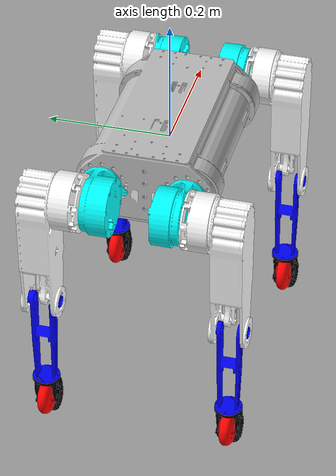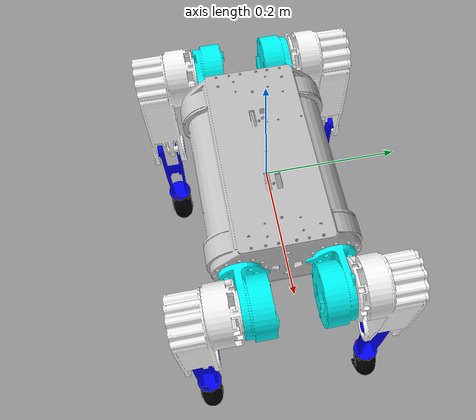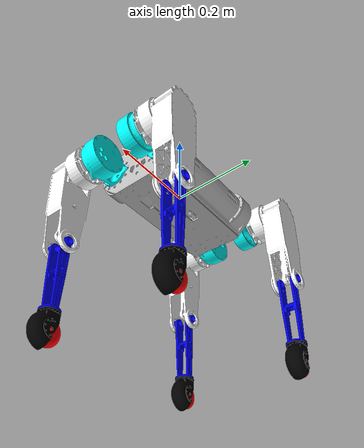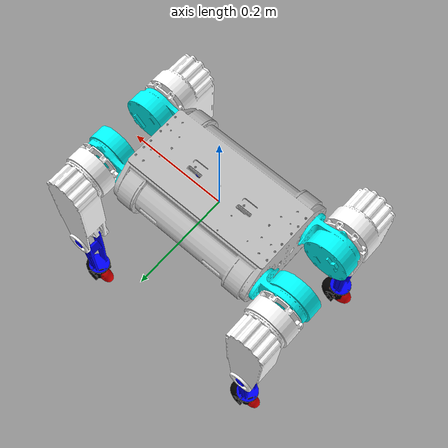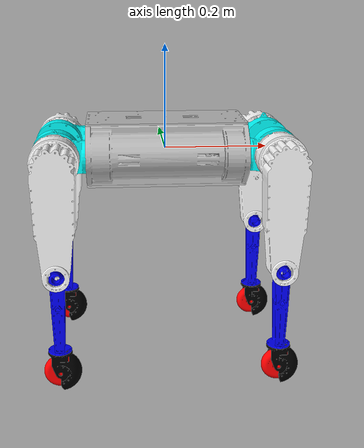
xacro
<?xml version="1.0" encoding="utf-8"?>
<robot name="robot_3dros" xmlns:xacro="http://www.ros.org/wiki/xacro">
<!--all parament*******************************************************************************************-->
   <xacro:include filename="robot_parameter.xacro" />

<!--Robot Model*******************************************************************************************-->
  <link name="dummy_link"></link>
  <joint name="dummy_joint" type="fixed">
      <parent link="dummy_link"/>
      <child link="body"/>
      <origin xyz="0 0 0" rpy="0 0 0"/>
  </joint>
  <link name="body">
    <inertial>
      <origin xyz="0 0 0" rpy="0 0 0" />
      <mass value="6.375" />
      <inertia ixx="0.02" ixy="0.02" ixz="0" iyy="0.04" iyz="0" izz="0.1" />
    </inertial>
    <visual>
      <origin xyz="0 0 0" rpy="0 0 0" />
      <geometry>
        <mesh filename="package://robot_3dros/meshes/body.STL" />
      </geometry>
      <material name="">
        <color rgba="0.75294 0.75294 0.75294 1" />
      </material>
    </visual>
    <collision>
      <origin xyz="0 0 0" rpy="0 0 0" />
      <geometry> <box size="0.32 0.2 0.1" /></geometry>
    </collision>
  </link>

<!--Leg Model*******************************************************************************************-->
<xacro:macro name="Leg_Model" params="number LR FB bodyX bodyY">

  <link name="Leg${number}_1">
    <inertial>
      <origin xyz="-0.0048088 0.011984 -0.00014763" rpy="0 0 0" />
      <mass value="0.737" />
      <inertia ixx="0.00019653" ixy="-1.8591E-05" ixz="4.9889E-07" iyy="0.0003475" iyz="2.6057E-07" izz="0.00025499" />
    </inertial>
    <visual>
      <origin xyz="0 0 0" rpy="0 0 0" />
      <geometry> <mesh filename="package://robot_3dros/meshes/hip.STL" /> </geometry>
      <material name=""> <color rgba="0 1 1 1" /> </material>
    </visual>
    <collision>
      <origin xyz="0 0.01 0" rpy="${pi/2} 0 0" />
      <geometry> <cylinder length="0.05" radius="0.042"/></geometry>
    </collision>
  </link>
  <joint name="Joint${number}_1" type="revolute">
    <origin xyz="${bodyX} ${bodyY} 0" rpy="${LR*pi} ${FB*pi} 0 " />
    <parent link="body" />
    <child link="Leg${number}_1" />
    <axis xyz="${(1-2*FB)} 0 0" />
    <xacro:insert_block name="S_first_joint"/>
  </joint>

  <link name="Leg${number}_2">
    <inertial>
      <origin xyz="0.00046621 -0.06095 -0.033086" rpy="0 0 0" />
      <mass value="1.33" />
      <inertia ixx="0.0022624" ixy="2.2337E-06" ixz="1.0859E-05" iyy="0.0021546" iyz="-0.00038069" izz="0.00060986" />
    </inertial>
    <visual>
      <origin xyz="0 0 0" rpy="0 0 0" />
      <geometry> <mesh filename="package://robot_3dros/meshes/thigh.STL" /> </geometry>
      <material name=""> <color rgba="1 1 1 1" /> </material>
    </visual>
    <collision>
      <origin xyz="0 -0.082 -0.07" rpy="0 0 0" />
      <geometry> <box size="0.05 0.05 0.14" /></geometry>
    </collision>
  </link>
  <joint name="Joint${number}_2" type="revolute">
    <origin xyz="0 0 0" rpy="0 ${(LR+FB)*pi} 0" />
    <parent link="Leg${number}_1" />
    <child link="Leg${number}_2" />
    <axis xyz="0 ${(1-2*LR)} 0" />
    <xacro:insert_block name="S_second_joint"/>
  </joint>

  <link name="Leg${number}_3">
    <inertial>
      <origin xyz="-3.32159080737304E-05 -0.0842117243955346 -0.0778011311158" rpy="0 0 0" />
      <mass value="0.3378415573005454" />
      <inertia ixx="0.000118289188240736" ixy="-1.20605766690612E-08" ixz="-9.79904638356768E-08" iyy="0.00011232311367555" iyz="2.56592635035973E-07" izz="1.04214285216922E-05" />
    </inertial>
    <visual>
      <origin xyz="0 0 0" rpy="0 0 0" />
      <geometry> <mesh filename="package://robot_3dros/meshes/calf.STL" /> </geometry>
      <material name=""> <color rgba="0 0 1 1" /> </material>
    </visual>
    <collision>
      <origin xyz="0 -0.083 -0.08" rpy="0 0 0" />
      <geometry> <box size="0.024 0.022 0.16" /></geometry>
    </collision>
  </link>
  <joint name="Joint${number}_3" type="revolute">
    <origin xyz="0 0 -0.2" rpy="0 0 0" />
    <parent link="Leg${number}_2" />
    <child link="Leg${number}_3" />
    <axis xyz="0 ${(1-2*LR)} 0" />
    <xacro:insert_block name="S_third_joint"/>
  </joint>

  <link name="Leg${number}_foot">
    <inertial>
      <origin xyz="0.012517870330808 -1.9353823470486E-05 -0.0332306211433281" rpy="0 0 0" />
      <mass value="0.030238937745945" />
      <inertia ixx="2.19593557894146E-05" ixy="-7.46531081559123E-09" ixz="4.59219164049463E-06" iyy="2.29896117102417E-05" iyz="1.78638237651423E-08" izz="1.14229789878151E-05" />
    </inertial>
    <visual>
      <origin xyz="0 0 0" rpy="0 0 0" />
      <geometry> <mesh filename="package://robot_3dros/meshes/foot.STL" /> </geometry>
      <material name=""> <color rgba="0 0 0 1" /> </material>
    </visual>
    <collision>
      <origin xyz="0.01 -0.01 -0.076" rpy="0 0 0" />
      <geometry> <mesh filename="package://robot_3dros/meshes/wheel.STL" /> </geometry>
    </collision>
  </link>
  <joint name="Joint${number}_foot" type="revolute">
    <origin xyz="0 -0.0842 -0.1565" rpy="0 0 ${LR*pi}" /> <!--${LR*pi-(1-2*fabs(LR-(FB*Wheel_Stuct)))*Dir_Angle}-->
    <parent link="Leg${number}_3" />
    <child link="Leg${number}_foot" />
    <axis xyz="0 0 1" />
    <xacro:insert_block name="S_Direct_joint"/>
  </joint>

  <link name="Leg${number}_wheel">
    <inertial>
      <origin xyz="0 2.77555756156289E-17 -5.55111512312578E-17" rpy="0 0 0" />
      <mass value="0.0586549867962651" />
      <inertia ixx="1.50205903282747E-05" ixy="1.88454867092046E-20" ixz="9.56249863142618E-35" iyy="2.60162395319431E-05" iyz="5.43092277337669E-20" izz="1.50205903282747E-05" />
    </inertial>
    <visual>
      <origin xyz="0 0 0" rpy="0 0 0" />
      <geometry> <mesh filename="package://robot_3dros/meshes/wheel.STL" /> </geometry>
      <material name=""> <color rgba="1 0 0 1" /> </material>
    </visual>
    <collision>
      <origin xyz="0 0 0" rpy="0 0 0" />
      <geometry> <mesh filename="package://robot_3dros/meshes/wheel.STL" /> </geometry>
    </collision>
  </link>
  <joint name="Joint${number}_wheel" type="continuous">
    <origin xyz="0 0 ${-0.0435}" rpy="0 0 0" />
    <parent link="Leg${number}_foot" />
    <child link="Leg${number}_wheel" />
    <axis xyz="0 1 0" />
    <xacro:insert_block name="S_Wheel_joint"/>
  </joint>

</xacro:macro>

<!--ALL Leg Set*******************************************************************************************-->
  <xacro:Leg_Model number="1" LR="0" FB="0" bodyX="${BODYX}" bodyY="${-BODYY}"></xacro:Leg_Model>
  <xacro:Leg_Model number="2" LR="1" FB="0" bodyX="${BODYX}" bodyY="${BODYY}"></xacro:Leg_Model>
  <xacro:Leg_Model number="3" LR="1" FB="1" bodyX="${-BODYX}" bodyY="${BODYY}"></xacro:Leg_Model>
  <xacro:Leg_Model number="4" LR="0" FB="1" bodyX="${-BODYX}" bodyY="${-BODYY}"></xacro:Leg_Model>

</robot>

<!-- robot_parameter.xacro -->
<robot name="robot_parameter" xmlns:xacro="http://www.ros.org/wiki/xacro">
  <!--the contant block-->
    <xacro:property name="BODYX" value="0.21"/>
    <xacro:property name="BODYY" value="0.068"/>
    <xacro:property name="Dir_Angle" value="${2*pi/18}"/>
    <xacro:property name="Wheel_Stuct" value="0"/> <!--pace:0 trot:1-->
    <xacro:property name="Wheel_State" value="continuous"/>
    <xacro:property name="Initial_BodyH" value="0.3"/>
    <xacro:property name="Initial_Angle1" value="0"/>
    <xacro:property name="Initial_Angle2" value="0"/>
    <xacro:property name="Initial_Angle3" value="0"/>

    <!--the same block-->
    <xacro:property name="S_first_joint">
            <dynamics damping="0.05" friction="0.05"/>
            <limit effort="50" velocity="${6*pi}" lower="${-1.4}" upper="${1.4}"/>
            <!--safety_controller k_velocity="" k_position="" soft_lower_limit="" soft_upper_limit=""/-->
    </xacro:property>
    <xacro:property name="S_second_joint">
            <dynamics damping="0.05" friction="0.05"/>
            <limit effort="50" velocity="${6*pi}" lower="${-1.5}" upper="${1.5}"/>
            <!--safety_controller k_velocity="" k_position="" soft_lower_limit="" soft_upper_limit=""/-->
    </xacro:property>
    <xacro:property name="S_third_joint">
            <dynamics damping="0.05" friction="0.05"/>
            <limit effort="50" velocity="${6*pi}" lower="${-2.7}" upper="${2.7}"/>
            <!--safety_controller k_velocity="" k_position="" soft_lower_limit="" soft_upper_limit=""/-->
    </xacro:property>
    <xacro:property name="S_Direct_joint">
            <dynamics damping="0.05" friction="0.05"/>
            <limit effort="50" velocity="${2*pi}" lower="${-pi/2}" upper="${pi/2}"/>
            <!--safety_controller k_velocity="" k_position="" soft_lower_limit="" soft_upper_limit=""/-->
    </xacro:property>
    <xacro:property name="S_Wheel_joint">
            <dynamics damping="0.1" friction="0.1"/>
    </xacro:property>

    <xacro:property name="Contact_Parameter">
	<mu1>0.3</mu1>
	<mu2>0.3</mu2>
	<kp>1000000.0</kp>
	<kd>100.0</kd>
	<material>Gazebo/DarkGrey</material>
        <gravity>true</gravity>
    </xacro:property>

</robot>
